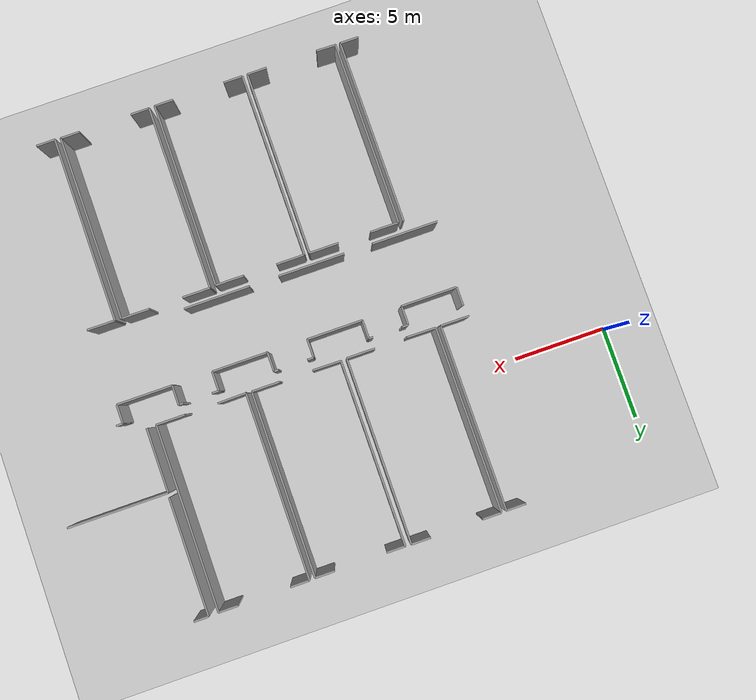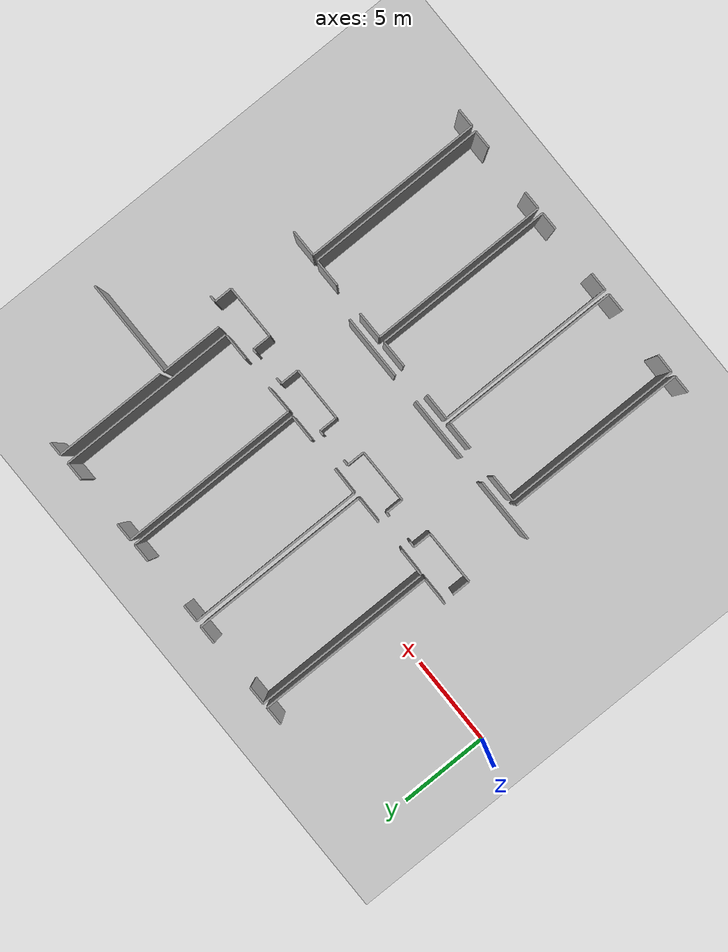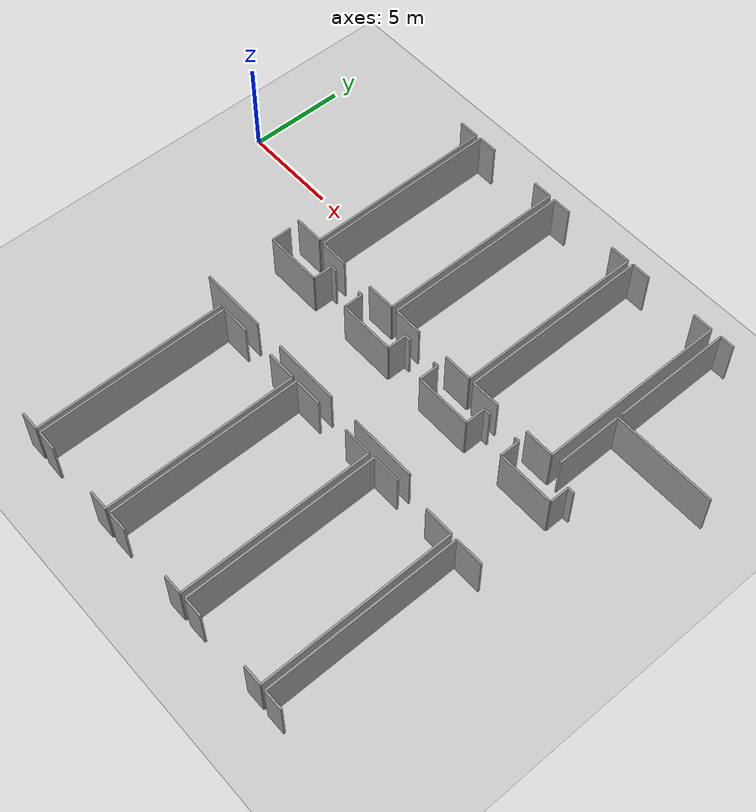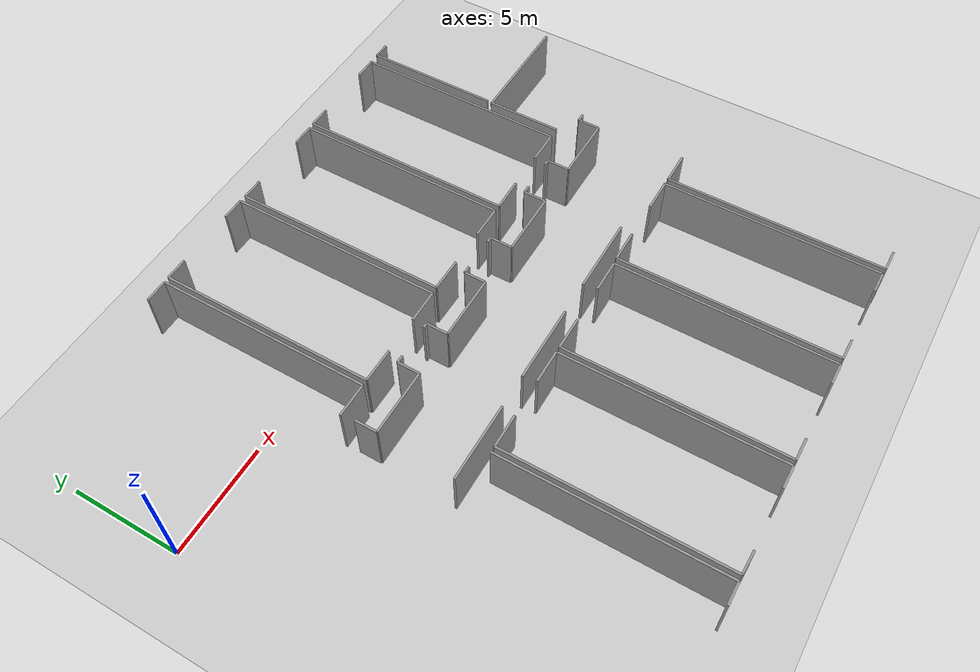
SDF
<sdf version="1.6">
 <world name="default">
  <model name="ground_plane">
   <static>1</static>
   <link name="link">
    <collision name="collision">
     <geometry><plane><normal>0 0 1</normal><size>100 100</size></plane></geometry>
     <surface><friction><ode><mu>100</mu><mu2>50</mu2></ode></friction></surface>
    </collision>
    <visual name="visual">
     <cast_shadows>0</cast_shadows>
     <geometry><plane><normal>0 0 1</normal><size>100 100</size></plane></geometry>
     <material>
      <script><uri>file://media/materials/scripts/gazebo.material</uri><name>Gazebo/Grey</name></script>
     </material>
    </visual>
   </link>
  </model>
  <model name="50055641">
   <static>1</static>
   <link name="Wall_212">
    <collision name="Wall_212_Collision">
     <geometry><box><size>1.01562797547 0.1 2.5</size></box></geometry>
     <pose>0.507813987736 0 1.25 0 0 0</pose>
    </collision>
    <visual name="Wall_212_Visual">
     <pose>0.507813987736 0 1.25 0 0 0</pose>
     <geometry><box><size>1.01562797547 0.1 2.5</size></box></geometry>
     <material>
      <script><uri>file://media/materials/scripts/gazebo.material</uri><name>Gazebo/Grey</name></script>
      <ambient>1 1 1 1</ambient>
     </material>
    </visual>
    <pose>76.2968934479 -22.2944305501 0 0 0 -1.57079632679</pose>
   </link>
   <link name="Wall_213">
    <collision name="Wall_213_Collision">
     <geometry><box><size>3.00270410948 0.1 2.5</size></box></geometry>
     <pose>1.50135205474 0 1.25 0 0 0</pose>
    </collision>
    <visual name="Wall_213_Visual">
     <pose>1.50135205474 0 1.25 0 0 0</pose>
     <geometry><box><size>3.00270410948 0.1 2.5</size></box></geometry>
     <material>
      <script><uri>file://media/materials/scripts/gazebo.material</uri><name>Gazebo/Grey</name></script>
      <ambient>1 1 1 1</ambient>
     </material>
    </visual>
    <pose>76.2968934479 -23.3100585256 0 0 0 0.0</pose>
   </link>
   <link name="Wall_214">
    <collision name="Wall_214_Collision">
     <geometry><box><size>1.02667292971 0.1 2.5</size></box></geometry>
     <pose>0.513336464853 0 1.25 0 0 0</pose>
    </collision>
    <visual name="Wall_214_Visual">
     <pose>0.513336464853 0 1.25 0 0 0</pose>
     <geometry><box><size>1.02667292971 0.1 2.5</size></box></geometry>
     <material>
      <script><uri>file://media/materials/scripts/gazebo.material</uri><name>Gazebo/Grey</name></script>
      <ambient>1 1 1 1</ambient>
     </material>
    </visual>
    <pose>79.2995975574 -23.3100585256 0 0 0 1.57079632679</pose>
   </link>
   <link name="Wall_215">
    <collision name="Wall_215_Collision">
     <geometry><box><size>0.342139674237 0.1 2.5</size></box></geometry>
     <pose>0.171069837119 0 1.25 0 0 0</pose>
    </collision>
    <visual name="Wall_215_Visual">
     <pose>0.171069837119 0 1.25 0 0 0</pose>
     <geometry><box><size>0.342139674237 0.1 2.5</size></box></geometry>
     <material>
      <script><uri>file://media/materials/scripts/gazebo.material</uri><name>Gazebo/Grey</name></script>
      <ambient>1 1 1 1</ambient>
     </material>
    </visual>
    <pose>79.2995975574 -22.2833855959 0 0 0 0.0</pose>
   </link>
   <link name="Wall_216">
    <collision name="Wall_216_Collision">
     <geometry><box><size>0.232324899389 0.1 2.5</size></box></geometry>
     <pose>0.116162449695 0 1.25 0 0 0</pose>
    </collision>
    <visual name="Wall_216_Visual">
     <pose>0.116162449695 0 1.25 0 0 0</pose>
     <geometry><box><size>0.232324899389 0.1 2.5</size></box></geometry>
     <material>
      <script><uri>file://media/materials/scripts/gazebo.material</uri><name>Gazebo/Grey</name></script>
      <ambient>1 1 1 1</ambient>
     </material>
    </visual>
    <pose>81.2145641052 -22.2833855959 0 0 0 0.0</pose>
   </link>
   <link name="Wall_217">
    <collision name="Wall_217_Collision">
     <geometry><box><size>1.00394825375 0.1 2.5</size></box></geometry>
     <pose>0.501974126877 0 1.25 0 0 0</pose>
    </collision>
    <visual name="Wall_217_Visual">
     <pose>0.501974126877 0 1.25 0 0 0</pose>
     <geometry><box><size>1.00394825375 0.1 2.5</size></box></geometry>
     <material>
      <script><uri>file://media/materials/scripts/gazebo.material</uri><name>Gazebo/Grey</name></script>
      <ambient>1 1 1 1</ambient>
     </material>
    </visual>
    <pose>81.4468890046 -22.2833855959 0 0 0 -1.57079632679</pose>
   </link>
   <link name="Wall_218">
    <collision name="Wall_218_Collision">
     <geometry><box><size>2.9977529231 0.1 2.5</size></box></geometry>
     <pose>1.49887646155 0 1.25 0 0 0</pose>
    </collision>
    <visual name="Wall_218_Visual">
     <pose>1.49887646155 0 1.25 0 0 0</pose>
     <geometry><box><size>2.9977529231 0.1 2.5</size></box></geometry>
     <material>
      <script><uri>file://media/materials/scripts/gazebo.material</uri><name>Gazebo/Grey</name></script>
      <ambient>1 1 1 1</ambient>
     </material>
    </visual>
    <pose>81.4468890046 -23.2873338496 0 0 0 0.0</pose>
   </link>
   <link name="Wall_219">
    <collision name="Wall_219_Collision">
     <geometry><box><size>1.00166309081 0.1 2.5</size></box></geometry>
     <pose>0.500831545405 0 1.25 0 0 0</pose>
    </collision>
    <visual name="Wall_219_Visual">
     <pose>0.500831545405 0 1.25 0 0 0</pose>
     <geometry><box><size>1.00166309081 0.1 2.5</size></box></geometry>
     <material>
      <script><uri>file://media/materials/scripts/gazebo.material</uri><name>Gazebo/Grey</name></script>
      <ambient>1 1 1 1</ambient>
     </material>
    </visual>
    <pose>84.4446419277 -23.2873338496 0 0 0 1.57079632679</pose>
   </link>
   <link name="Wall_220">
    <collision name="Wall_220_Collision">
     <geometry><box><size>0.333887696937 0.1 2.5</size></box></geometry>
     <pose>0.166943848468 0 1.25 0 0 0</pose>
    </collision>
    <visual name="Wall_220_Visual">
     <pose>0.166943848468 0 1.25 0 0 0</pose>
     <geometry><box><size>0.333887696937 0.1 2.5</size></box></geometry>
     <material>
      <script><uri>file://media/materials/scripts/gazebo.material</uri><name>Gazebo/Grey</name></script>
      <ambient>1 1 1 1</ambient>
     </material>
    </visual>
    <pose>84.4446419277 -22.2856707588 0 0 0 0.0</pose>
   </link>
   <link name="Wall_221">
    <collision name="Wall_221_Collision">
     <geometry><box><size>0.253906993868 0.1 2.5</size></box></geometry>
     <pose>0.126953496934 0 1.25 0 0 0</pose>
    </collision>
    <visual name="Wall_221_Visual">
     <pose>0.126953496934 0 1.25 0 0 0</pose>
     <geometry><box><size>0.253906993868 0.1 2.5</size></box></geometry>
     <material>
      <script><uri>file://media/materials/scripts/gazebo.material</uri><name>Gazebo/Grey</name></script>
      <ambient>1 1 1 1</ambient>
     </material>
    </visual>
    <pose>86.3427236603 -22.2856707588 0 0 0 0.0</pose>
   </link>
   <link name="Wall_222">
    <collision name="Wall_222_Collision">
     <geometry><box><size>1.03543272099 0.1 2.5</size></box></geometry>
     <pose>0.517716360497 0 1.25 0 0 0</pose>
    </collision>
    <visual name="Wall_222_Visual">
     <pose>0.517716360497 0 1.25 0 0 0</pose>
     <geometry><box><size>1.03543272099 0.1 2.5</size></box></geometry>
     <material>
      <script><uri>file://media/materials/scripts/gazebo.material</uri><name>Gazebo/Grey</name></script>
      <ambient>1 1 1 1</ambient>
     </material>
    </visual>
    <pose>86.5966306542 -22.2856707588 0 0 0 -1.57079632679</pose>
   </link>
   <link name="Wall_223">
    <collision name="Wall_223_Collision">
     <geometry><box><size>2.99165915525 0.1 2.5</size></box></geometry>
     <pose>1.49582957763 0 1.25 0 0 0</pose>
    </collision>
    <visual name="Wall_223_Visual">
     <pose>1.49582957763 0 1.25 0 0 0</pose>
     <geometry><box><size>2.99165915525 0.1 2.5</size></box></geometry>
     <material>
      <script><uri>file://media/materials/scripts/gazebo.material</uri><name>Gazebo/Grey</name></script>
      <ambient>1 1 1 1</ambient>
     </material>
    </visual>
    <pose>86.5966306542 -23.3211034798 0 0 0 0.0</pose>
   </link>
   <link name="Wall_224">
    <collision name="Wall_224_Collision">
     <geometry><box><size>1.04571595425 0.1 2.5</size></box></geometry>
     <pose>0.522857977123 0 1.25 0 0 0</pose>
    </collision>
    <visual name="Wall_224_Visual">
     <pose>0.522857977123 0 1.25 0 0 0</pose>
     <geometry><box><size>1.04571595425 0.1 2.5</size></box></geometry>
     <material>
      <script><uri>file://media/materials/scripts/gazebo.material</uri><name>Gazebo/Grey</name></script>
      <ambient>1 1 1 1</ambient>
     </material>
    </visual>
    <pose>89.5882898094 -23.3211034798 0 0 0 1.57079632679</pose>
   </link>
   <link name="Wall_225">
    <collision name="Wall_225_Collision">
     <geometry><box><size>0.372989373992 0.1 2.5</size></box></geometry>
     <pose>0.186494686996 0 1.25 0 0 0</pose>
    </collision>
    <visual name="Wall_225_Visual">
     <pose>0.186494686996 0 1.25 0 0 0</pose>
     <geometry><box><size>0.372989373992 0.1 2.5</size></box></geometry>
     <material>
      <script><uri>file://media/materials/scripts/gazebo.material</uri><name>Gazebo/Grey</name></script>
      <ambient>1 1 1 1</ambient>
     </material>
    </visual>
    <pose>89.5882898094 -22.2753875255 0 0 0 0.0</pose>
   </link>
   <link name="Wall_226">
    <collision name="Wall_226_Collision">
     <geometry><box><size>0.258731226752 0.1 2.5</size></box></geometry>
     <pose>0.129365613376 0 1.25 0 0 0</pose>
    </collision>
    <visual name="Wall_226_Visual">
     <pose>0.129365613376 0 1.25 0 0 0</pose>
     <geometry><box><size>0.258731226752 0.1 2.5</size></box></geometry>
     <material>
      <script><uri>file://media/materials/scripts/gazebo.material</uri><name>Gazebo/Grey</name></script>
      <ambient>1 1 1 1</ambient>
     </material>
    </visual>
    <pose>91.4971625893 -22.2753875255 0 0 0 0.0</pose>
   </link>
   <link name="Wall_227">
    <collision name="Wall_227_Collision">
     <geometry><box><size>1.0434307913 0.1 2.5</size></box></geometry>
     <pose>0.521715395651 0 1.25 0 0 0</pose>
    </collision>
    <visual name="Wall_227_Visual">
     <pose>0.521715395651 0 1.25 0 0 0</pose>
     <geometry><box><size>1.0434307913 0.1 2.5</size></box></geometry>
     <material>
      <script><uri>file://media/materials/scripts/gazebo.material</uri><name>Gazebo/Grey</name></script>
      <ambient>1 1 1 1</ambient>
     </material>
    </visual>
    <pose>91.7558938161 -22.2753875255 0 0 0 -1.57079632679</pose>
   </link>
   <link name="Wall_228">
    <collision name="Wall_228_Collision">
     <geometry><box><size>2.98835836433 0.1 2.5</size></box></geometry>
     <pose>1.49417918217 0 1.25 0 0 0</pose>
    </collision>
    <visual name="Wall_228_Visual">
     <pose>1.49417918217 0 1.25 0 0 0</pose>
     <geometry><box><size>2.98835836433 0.1 2.5</size></box></geometry>
     <material>
      <script><uri>file://media/materials/scripts/gazebo.material</uri><name>Gazebo/Grey</name></script>
      <ambient>1 1 1 1</ambient>
     </material>
    </visual>
    <pose>91.7558938161 -23.3188183169 0 0 0 0.0</pose>
   </link>
   <link name="Wall_229">
    <collision name="Wall_229_Collision">
     <geometry><box><size>1.01829399891 0.1 2.5</size></box></geometry>
     <pose>0.509146999454 0 1.25 0 0 0</pose>
    </collision>
    <visual name="Wall_229_Visual">
     <pose>0.509146999454 0 1.25 0 0 0</pose>
     <geometry><box><size>1.01829399891 0.1 2.5</size></box></geometry>
     <material>
      <script><uri>file://media/materials/scripts/gazebo.material</uri><name>Gazebo/Grey</name></script>
      <ambient>1 1 1 1</ambient>
     </material>
    </visual>
    <pose>94.7442521804 -23.3188183169 0 0 0 1.57079632679</pose>
   </link>
   <link name="Wall_230">
    <collision name="Wall_230_Collision">
     <geometry><box><size>0.35902448933 0.1 2.5</size></box></geometry>
     <pose>0.179512244665 0 1.25 0 0 0</pose>
    </collision>
    <visual name="Wall_230_Visual">
     <pose>0.179512244665 0 1.25 0 0 0</pose>
     <geometry><box><size>0.35902448933 0.1 2.5</size></box></geometry>
     <material>
      <script><uri>file://media/materials/scripts/gazebo.material</uri><name>Gazebo/Grey</name></script>
      <ambient>1 1 1 1</ambient>
     </material>
    </visual>
    <pose>94.7442521804 -22.3005243179 0 0 0 0.0</pose>
   </link>
   <link name="Wall_236">
    <collision name="Wall_236_Collision">
     <geometry><box><size>3.55990300753 0.1 2.5</size></box></geometry>
     <pose>1.77995150376 0 1.25 0 0 0</pose>
    </collision>
    <visual name="Wall_236_Visual">
     <pose>1.77995150376 0 1.25 0 0 0</pose>
     <geometry><box><size>3.55990300753 0.1 2.5</size></box></geometry>
     <material>
      <script><uri>file://media/materials/scripts/gazebo.material</uri><name>Gazebo/Grey</name></script>
      <ambient>1 1 1 1</ambient>
     </material>
    </visual>
    <pose>89.9338572281 -26.8594243928 0 0 0 3.14159265359</pose>
   </link>
   <link name="Wall_237">
    <collision name="Wall_237_Collision">
     <geometry><box><size>3.58059642753 0.1 2.5</size></box></geometry>
     <pose>1.79029821376 0 1.25 0 0 0</pose>
    </collision>
    <visual name="Wall_237_Visual">
     <pose>1.79029821376 0 1.25 0 0 0</pose>
     <geometry><box><size>3.58059642753 0.1 2.5</size></box></geometry>
     <material>
      <script><uri>file://media/materials/scripts/gazebo.material</uri><name>Gazebo/Grey</name></script>
      <ambient>1 1 1 1</ambient>
     </material>
    </visual>
    <pose>84.7899554393 -26.8594243928 0 0 0 3.14159265359</pose>
   </link>
   <link name="Wall_238">
    <collision name="Wall_238_Collision">
     <geometry><box><size>3.561045589 0.1 2.5</size></box></geometry>
     <pose>1.7805227945 0 1.25 0 0 0</pose>
    </collision>
    <visual name="Wall_238_Visual">
     <pose>1.7805227945 0 1.25 0 0 0</pose>
     <geometry><box><size>3.561045589 0.1 2.5</size></box></geometry>
     <material>
      <script><uri>file://media/materials/scripts/gazebo.material</uri><name>Gazebo/Grey</name></script>
      <ambient>1 1 1 1</ambient>
     </material>
    </visual>
    <pose>79.6480849065 -26.8594243928 0 0 0 3.14159265359</pose>
   </link>
   <link name="Wall_272">
    <collision name="Wall_272_Collision">
     <geometry><box><size>1.05409488504 0.1 2.5</size></box></geometry>
     <pose>0.527047442522 0 1.25 0 0 0</pose>
    </collision>
    <visual name="Wall_272_Visual">
     <pose>0.527047442522 0 1.25 0 0 0</pose>
     <geometry><box><size>1.05409488504 0.1 2.5</size></box></geometry>
     <material>
      <script><uri>file://media/materials/scripts/gazebo.material</uri><name>Gazebo/Grey</name></script>
      <ambient>1 1 1 1</ambient>
     </material>
    </visual>
    <pose>76.6820703576 -11.7486574668 0 0 0 0.0</pose>
   </link>
   <link name="Wall_273">
    <collision name="Wall_273_Collision">
     <geometry><box><size>9.94172834491 0.1 2.5</size></box></geometry>
     <pose>4.97086417245 0 1.25 0 0 0</pose>
    </collision>
    <visual name="Wall_273_Visual">
     <pose>4.97086417245 0 1.25 0 0 0</pose>
     <geometry><box><size>9.94172834491 0.1 2.5</size></box></geometry>
     <material>
      <script><uri>file://media/materials/scripts/gazebo.material</uri><name>Gazebo/Grey</name></script>
      <ambient>1 1 1 1</ambient>
     </material>
    </visual>
    <pose>77.7361652427 -11.7486574668 0 0 0 -1.57079632679</pose>
   </link>
   <link name="Wall_274">
    <collision name="Wall_274_Collision">
     <geometry><box><size>1.55175259303 0.1 2.5</size></box></geometry>
     <pose>0.775876296513 0 1.25 0 0 0</pose>
    </collision>
    <visual name="Wall_274_Visual">
     <pose>0.775876296513 0 1.25 0 0 0</pose>
     <geometry><box><size>1.55175259303 0.1 2.5</size></box></geometry>
     <material>
      <script><uri>file://media/materials/scripts/gazebo.material</uri><name>Gazebo/Grey</name></script>
      <ambient>1 1 1 1</ambient>
     </material>
    </visual>
    <pose>77.7361652427 -21.6903858117 0 0 0 3.14159265359</pose>
   </link>
   <link name="Wall_276">
    <collision name="Wall_276_Collision">
     <geometry><box><size>9.95467760159 0.1 2.5</size></box></geometry>
     <pose>4.9773388008 0 1.25 0 0 0</pose>
    </collision>
    <visual name="Wall_276_Visual">
     <pose>4.9773388008 0 1.25 0 0 0</pose>
     <geometry><box><size>9.95467760159 0.1 2.5</size></box></geometry>
     <material>
      <script><uri>file://media/materials/scripts/gazebo.material</uri><name>Gazebo/Grey</name></script>
      <ambient>1 1 1 1</ambient>
     </material>
    </visual>
    <pose>78.0031484467 -21.6853076718 0 0 0 1.57079632679</pose>
   </link>
   <link name="Wall_277">
    <collision name="Wall_277_Collision">
     <geometry><box><size>1.01753227793 0.1 2.5</size></box></geometry>
     <pose>0.508766138963 0 1.25 0 0 0</pose>
    </collision>
    <visual name="Wall_277_Visual">
     <pose>0.508766138963 0 1.25 0 0 0</pose>
     <geometry><box><size>1.01753227793 0.1 2.5</size></box></geometry>
     <material>
      <script><uri>file://media/materials/scripts/gazebo.material</uri><name>Gazebo/Grey</name></script>
      <ambient>1 1 1 1</ambient>
     </material>
    </visual>
    <pose>78.0031484467 -11.7306300702 0 0 0 0.0</pose>
   </link>
   <link name="Wall_278">
    <collision name="Wall_278_Collision">
     <geometry><box><size>1.03733702345 0.1 2.5</size></box></geometry>
     <pose>0.518668511724 0 1.25 0 0 0</pose>
    </collision>
    <visual name="Wall_278_Visual">
     <pose>0.518668511724 0 1.25 0 0 0</pose>
     <geometry><box><size>1.03733702345 0.1 2.5</size></box></geometry>
     <material>
      <script><uri>file://media/materials/scripts/gazebo.material</uri><name>Gazebo/Grey</name></script>
      <ambient>1 1 1 1</ambient>
     </material>
    </visual>
    <pose>81.8146732852 -11.7306300702 0 0 0 0.0</pose>
   </link>
   <link name="Wall_279">
    <collision name="Wall_279_Collision">
     <geometry><box><size>9.96788076528 0.1 2.5</size></box></geometry>
     <pose>4.98394038264 0 1.25 0 0 0</pose>
    </collision>
    <visual name="Wall_279_Visual">
     <pose>4.98394038264 0 1.25 0 0 0</pose>
     <geometry><box><size>9.96788076528 0.1 2.5</size></box></geometry>
     <material>
      <script><uri>file://media/materials/scripts/gazebo.material</uri><name>Gazebo/Grey</name></script>
      <ambient>1 1 1 1</ambient>
     </material>
    </visual>
    <pose>82.8520103086 -11.7306300702 0 0 0 -1.57079632679</pose>
   </link>
   <link name="Wall_280">
    <collision name="Wall_280_Collision">
     <geometry><box><size>1.53131308002 0.1 2.5</size></box></geometry>
     <pose>0.765656540009 0 1.25 0 0 0</pose>
    </collision>
    <visual name="Wall_280_Visual">
     <pose>0.765656540009 0 1.25 0 0 0</pose>
     <geometry><box><size>1.53131308002 0.1 2.5</size></box></geometry>
     <material>
      <script><uri>file://media/materials/scripts/gazebo.material</uri><name>Gazebo/Grey</name></script>
      <ambient>1 1 1 1</ambient>
     </material>
    </visual>
    <pose>82.8520103086 -21.6985108355 0 0 0 3.14159265359</pose>
   </link>
   <link name="Wall_281">
    <collision name="Wall_281_Collision">
     <geometry><box><size>1.56983551344 0.1 2.5</size></box></geometry>
     <pose>0.784917756718 0 1.25 0 0 0</pose>
    </collision>
    <visual name="Wall_281_Visual">
     <pose>0.784917756718 0 1.25 0 0 0</pose>
     <geometry><box><size>1.56983551344 0.1 2.5</size></box></geometry>
     <material>
      <script><uri>file://media/materials/scripts/gazebo.material</uri><name>Gazebo/Grey</name></script>
      <ambient>1 1 1 1</ambient>
     </material>
    </visual>
    <pose>79.5729284363 -21.6985108355 0 0 0 3.13318201487</pose>
   </link>
   <link name="Wall_282">
    <collision name="Wall_282_Collision">
     <geometry><box><size>9.91176731963 0.1 2.5</size></box></geometry>
     <pose>4.95588365982 0 1.25 0 0 0</pose>
    </collision>
    <visual name="Wall_282_Visual">
     <pose>4.95588365982 0 1.25 0 0 0</pose>
     <geometry><box><size>9.91176731963 0.1 2.5</size></box></geometry>
     <material>
      <script><uri>file://media/materials/scripts/gazebo.material</uri><name>Gazebo/Grey</name></script>
      <ambient>1 1 1 1</ambient>
     </material>
    </visual>
    <pose>83.1744721908 -21.6651220658 0 0 0 1.57079632679</pose>
   </link>
   <link name="Wall_283">
    <collision name="Wall_283_Collision">
     <geometry><box><size>0.994807601975 0.1 2.5</size></box></geometry>
     <pose>0.497403800988 0 1.25 0 0 0</pose>
    </collision>
    <visual name="Wall_283_Visual">
     <pose>0.497403800988 0 1.25 0 0 0</pose>
     <geometry><box><size>0.994807601975 0.1 2.5</size></box></geometry>
     <material>
      <script><uri>file://media/materials/scripts/gazebo.material</uri><name>Gazebo/Grey</name></script>
      <ambient>1 1 1 1</ambient>
     </material>
    </visual>
    <pose>83.1744721908 -11.7533547462 0 0 0 0.0</pose>
   </link>
   <link name="Wall_284">
    <collision name="Wall_284_Collision">
     <geometry><box><size>1.04292297731 0.1 2.5</size></box></geometry>
     <pose>0.521461488657 0 1.25 0 0 0</pose>
    </collision>
    <visual name="Wall_284_Visual">
     <pose>0.521461488657 0 1.25 0 0 0</pose>
     <geometry><box><size>1.04292297731 0.1 2.5</size></box></geometry>
     <material>
      <script><uri>file://media/materials/scripts/gazebo.material</uri><name>Gazebo/Grey</name></script>
      <ambient>1 1 1 1</ambient>
     </material>
    </visual>
    <pose>86.9628914928 -11.7533547462 0 0 0 0.0</pose>
   </link>
   <link name="Wall_285">
    <collision name="Wall_285_Collision">
     <geometry><box><size>9.93423808859 0.1 2.5</size></box></geometry>
     <pose>4.96711904429 0 1.25 0 0 0</pose>
    </collision>
    <visual name="Wall_285_Visual">
     <pose>4.96711904429 0 1.25 0 0 0</pose>
     <geometry><box><size>9.93423808859 0.1 2.5</size></box></geometry>
     <material>
      <script><uri>file://media/materials/scripts/gazebo.material</uri><name>Gazebo/Grey</name></script>
      <ambient>1 1 1 1</ambient>
     </material>
    </visual>
    <pose>88.0058144702 -11.7533547462 0 0 0 -1.57079632679</pose>
   </link>
   <link name="Wall_286">
    <collision name="Wall_286_Collision">
     <geometry><box><size>1.52102984677 0.1 2.5</size></box></geometry>
     <pose>0.760514923384 0 1.25 0 0 0</pose>
    </collision>
    <visual name="Wall_286_Visual">
     <pose>0.760514923384 0 1.25 0 0 0</pose>
     <geometry><box><size>1.52102984677 0.1 2.5</size></box></geometry>
     <material>
      <script><uri>file://media/materials/scripts/gazebo.material</uri><name>Gazebo/Grey</name></script>
      <ambient>1 1 1 1</ambient>
     </material>
    </visual>
    <pose>88.0058144702 -21.6875928347 0 0 0 3.14159265359</pose>
   </link>
   <link name="Wall_287">
    <collision name="Wall_287_Collision">
     <geometry><box><size>1.54417193553 0.1 2.5</size></box></geometry>
     <pose>0.772085967765 0 1.25 0 0 0</pose>
    </collision>
    <visual name="Wall_287_Visual">
     <pose>0.772085967765 0 1.25 0 0 0</pose>
     <geometry><box><size>1.54417193553 0.1 2.5</size></box></geometry>
     <material>
      <script><uri>file://media/materials/scripts/gazebo.material</uri><name>Gazebo/Grey</name></script>
      <ambient>1 1 1 1</ambient>
     </material>
    </visual>
    <pose>84.7184806205 -21.6875928347 0 0 0 3.12704015358</pose>
   </link>
   <link name="Wall_288">
    <collision name="Wall_288_Collision">
     <geometry><box><size>9.97867181252 0.1 2.5</size></box></geometry>
     <pose>4.98933590626 0 1.25 0 0 0</pose>
    </collision>
    <visual name="Wall_288_Visual">
     <pose>4.98933590626 0 1.25 0 0 0</pose>
     <geometry><box><size>9.97867181252 0.1 2.5</size></box></geometry>
     <material>
      <script><uri>file://media/materials/scripts/gazebo.material</uri><name>Gazebo/Grey</name></script>
      <ambient>1 1 1 1</ambient>
     </material>
    </visual>
    <pose>88.3077098859 -21.7093018827 0 0 0 1.57079632679</pose>
   </link>
   <link name="Wall_289">
    <collision name="Wall_289_Collision">
     <geometry><box><size>1.01321585903 0.1 2.5</size></box></geometry>
     <pose>0.506607929515 0 1.25 0 0 0</pose>
    </collision>
    <visual name="Wall_289_Visual">
     <pose>0.506607929515 0 1.25 0 0 0</pose>
     <geometry><box><size>1.01321585903 0.1 2.5</size></box></geometry>
     <material>
      <script><uri>file://media/materials/scripts/gazebo.material</uri><name>Gazebo/Grey</name></script>
      <ambient>1 1 1 1</ambient>
     </material>
    </visual>
    <pose>88.3077098859 -11.7306300702 0 0 0 0.0</pose>
   </link>
   <link name="Wall_290">
    <collision name="Wall_290_Collision">
     <geometry><box><size>1.0516827686 0.1 2.5</size></box></geometry>
     <pose>0.525841384301 0 1.25 0 0 0</pose>
    </collision>
    <visual name="Wall_290_Visual">
     <pose>0.525841384301 0 1.25 0 0 0</pose>
     <geometry><box><size>1.0516827686 0.1 2.5</size></box></geometry>
     <material>
      <script><uri>file://media/materials/scripts/gazebo.material</uri><name>Gazebo/Grey</name></script>
      <ambient>1 1 1 1</ambient>
     </material>
    </visual>
    <pose>92.1065393746 -11.7306300702 0 0 0 0.0</pose>
   </link>
   <link name="Wall_291">
    <collision name="Wall_291_Collision">
     <geometry><box><size>9.95467760159 0.1 2.5</size></box></geometry>
     <pose>4.9773388008 0 1.25 0 0 0</pose>
    </collision>
    <visual name="Wall_291_Visual">
     <pose>4.9773388008 0 1.25 0 0 0</pose>
     <geometry><box><size>9.95467760159 0.1 2.5</size></box></geometry>
     <material>
      <script><uri>file://media/materials/scripts/gazebo.material</uri><name>Gazebo/Grey</name></script>
      <ambient>1 1 1 1</ambient>
     </material>
    </visual>
    <pose>93.1582221432 -11.7306300702 0 0 0 -1.57079632679</pose>
   </link>
   <link name="Wall_292">
    <collision name="Wall_292_Collision">
     <geometry><box><size>1.55251431401 0.1 2.5</size></box></geometry>
     <pose>0.776257157003 0 1.25 0 0 0</pose>
    </collision>
    <visual name="Wall_292_Visual">
     <pose>0.776257157003 0 1.25 0 0 0</pose>
     <geometry><box><size>1.55251431401 0.1 2.5</size></box></geometry>
     <material>
      <script><uri>file://media/materials/scripts/gazebo.material</uri><name>Gazebo/Grey</name></script>
      <ambient>1 1 1 1</ambient>
     </material>
    </visual>
    <pose>93.1582221432 -21.6853076718 0 0 0 3.14159265359</pose>
   </link>
   <link name="Wall_293">
    <collision name="Wall_293_Collision">
     <geometry><box><size>1.53264349299 0.1 2.5</size></box></geometry>
     <pose>0.766321746493 0 1.25 0 0 0</pose>
    </collision>
    <visual name="Wall_293_Visual">
     <pose>0.766321746493 0 1.25 0 0 0</pose>
     <geometry><box><size>1.53264349299 0.1 2.5</size></box></geometry>
     <material>
      <script><uri>file://media/materials/scripts/gazebo.material</uri><name>Gazebo/Grey</name></script>
      <ambient>1 1 1 1</ambient>
     </material>
    </visual>
    <pose>89.8401655474 -21.6853076718 0 0 0 -3.12593657227</pose>
   </link>
   <link name="Wall_294">
    <collision name="Wall_294_Collision">
     <geometry><box><size>3.45580114004 0.1 2.5</size></box></geometry>
     <pose>1.72790057002 0 1.25 0 0 0</pose>
    </collision>
    <visual name="Wall_294_Visual">
     <pose>1.72790057002 0 1.25 0 0 0</pose>
     <geometry><box><size>3.45580114004 0.1 2.5</size></box></geometry>
     <material>
      <script><uri>file://media/materials/scripts/gazebo.material</uri><name>Gazebo/Grey</name></script>
      <ambient>1 1 1 1</ambient>
     </material>
    </visual>
    <pose>93.6695908289 -21.675659206 0 0 0 1.57079632679</pose>
   </link>
   <link name="Wall_295">
    <collision name="Wall_295_Collision">
     <geometry><box><size>5.39222282878 0.1 2.5</size></box></geometry>
     <pose>2.69611141439 0 1.25 0 0 0</pose>
    </collision>
    <visual name="Wall_295_Visual">
     <pose>2.69611141439 0 1.25 0 0 0</pose>
     <geometry><box><size>5.39222282878 0.1 2.5</size></box></geometry>
     <material>
      <script><uri>file://media/materials/scripts/gazebo.material</uri><name>Gazebo/Grey</name></script>
      <ambient>1 1 1 1</ambient>
     </material>
    </visual>
    <pose>93.6695908289 -18.219858066 0 0 0 0.0</pose>
   </link>
   <link name="Wall_301">
    <collision name="Wall_301_Collision">
     <geometry><box><size>10.019169978 0.1 2.5</size></box></geometry>
     <pose>5.00958498902 0 1.25 0 0 0</pose>
    </collision>
    <visual name="Wall_301_Visual">
     <pose>5.00958498902 0 1.25 0 0 0</pose>
     <geometry><box><size>10.019169978 0.1 2.5</size></box></geometry>
     <material>
      <script><uri>file://media/materials/scripts/gazebo.material</uri><name>Gazebo/Grey</name></script>
      <ambient>1 1 1 1</ambient>
     </material>
    </visual>
    <pose>93.4827152814 -37.4699437596 0 0 0 1.57079632679</pose>
   </link>
   <link name="Wall_302">
    <collision name="Wall_302_Collision">
     <geometry><box><size>1.50363721769 0.1 2.5</size></box></geometry>
     <pose>0.751818608844 0 1.25 0 0 0</pose>
    </collision>
    <visual name="Wall_302_Visual">
     <pose>0.751818608844 0 1.25 0 0 0</pose>
     <geometry><box><size>1.50363721769 0.1 2.5</size></box></geometry>
     <material>
      <script><uri>file://media/materials/scripts/gazebo.material</uri><name>Gazebo/Grey</name></script>
      <ambient>1 1 1 1</ambient>
     </material>
    </visual>
    <pose>93.4827152814 -27.4507737816 0 0 0 0.0</pose>
   </link>
   <link name="Wall_306">
    <collision name="Wall_306_Collision">
     <geometry><box><size>1.01600979569 0.1 2.5</size></box></geometry>
     <pose>0.508004897844 0 1.25 0 0 0</pose>
    </collision>
    <visual name="Wall_306_Visual">
     <pose>0.508004897844 0 1.25 0 0 0</pose>
     <geometry><box><size>1.01600979569 0.1 2.5</size></box></geometry>
     <material>
      <script><uri>file://media/materials/scripts/gazebo.material</uri><name>Gazebo/Grey</name></script>
      <ambient>1 1 1 1</ambient>
     </material>
    </visual>
    <pose>94.4987241174 -37.4685472711 0 0 0 -3.14021816989</pose>
   </link>
   <link name="Wall_307">
    <collision name="Wall_307_Collision">
     <geometry><box><size>1.02667292971 0.1 2.5</size></box></geometry>
     <pose>0.513336464853 0 1.25 0 0 0</pose>
    </collision>
    <visual name="Wall_307_Visual">
     <pose>0.513336464853 0 1.25 0 0 0</pose>
     <geometry><box><size>1.02667292971 0.1 2.5</size></box></geometry>
     <material>
      <script><uri>file://media/materials/scripts/gazebo.material</uri><name>Gazebo/Grey</name></script>
      <ambient>1 1 1 1</ambient>
     </material>
    </visual>
    <pose>93.1761225863 -37.4404905483 0 0 0 3.14159265359</pose>
   </link>
   <link name="Wall_308">
    <collision name="Wall_308_Collision">
     <geometry><box><size>1.01562797547 0.1 2.5</size></box></geometry>
     <pose>0.507813987736 0 1.25 0 0 0</pose>
    </collision>
    <visual name="Wall_308_Visual">
     <pose>0.507813987736 0 1.25 0 0 0</pose>
     <geometry><box><size>1.01562797547 0.1 2.5</size></box></geometry>
     <material>
      <script><uri>file://media/materials/scripts/gazebo.material</uri><name>Gazebo/Grey</name></script>
      <ambient>1 1 1 1</ambient>
     </material>
    </visual>
    <pose>89.3343828156 -37.4404905483 0 0 0 3.14159265359</pose>
   </link>
   <link name="Wall_309">
    <collision name="Wall_309_Collision">
     <geometry><box><size>10.0019043025 0.1 2.5</size></box></geometry>
     <pose>5.00095215123 0 1.25 0 0 0</pose>
    </collision>
    <visual name="Wall_309_Visual">
     <pose>5.00095215123 0 1.25 0 0 0</pose>
     <geometry><box><size>10.0019043025 0.1 2.5</size></box></geometry>
     <material>
      <script><uri>file://media/materials/scripts/gazebo.material</uri><name>Gazebo/Grey</name></script>
      <ambient>1 1 1 1</ambient>
     </material>
    </visual>
    <pose>88.3187548401 -37.4404905483 0 0 0 1.57079632679</pose>
   </link>
   <link name="Wall_310">
    <collision name="Wall_310_Collision">
     <geometry><box><size>1.50528761315 0.1 2.5</size></box></geometry>
     <pose>0.752643806574 0 1.25 0 0 0</pose>
    </collision>
    <visual name="Wall_310_Visual">
     <pose>0.752643806574 0 1.25 0 0 0</pose>
     <geometry><box><size>1.50528761315 0.1 2.5</size></box></geometry>
     <material>
      <script><uri>file://media/materials/scripts/gazebo.material</uri><name>Gazebo/Grey</name></script>
      <ambient>1 1 1 1</ambient>
     </material>
    </visual>
    <pose>88.3187548401 -27.4385862459 0 0 0 0.0</pose>
   </link>
   <link name="Wall_311">
    <collision name="Wall_311_Collision">
     <geometry><box><size>1.54756312763 0.1 2.5</size></box></geometry>
     <pose>0.773781563813 0 1.25 0 0 0</pose>
    </collision>
    <visual name="Wall_311_Visual">
     <pose>0.773781563813 0 1.25 0 0 0</pose>
     <geometry><box><size>1.54756312763 0.1 2.5</size></box></geometry>
     <material>
      <script><uri>file://media/materials/scripts/gazebo.material</uri><name>Gazebo/Grey</name></script>
      <ambient>1 1 1 1</ambient>
     </material>
    </visual>
    <pose>91.6052000152 -27.4385862459 0 0 0 0.0</pose>
   </link>
   <link name="Wall_312">
    <collision name="Wall_312_Collision">
     <geometry><box><size>10.0019315804 0.1 2.5</size></box></geometry>
     <pose>5.0009657902 0 1.25 0 0 0</pose>
    </collision>
    <visual name="Wall_312_Visual">
     <pose>5.0009657902 0 1.25 0 0 0</pose>
     <geometry><box><size>10.0019315804 0.1 2.5</size></box></geometry>
     <material>
      <script><uri>file://media/materials/scripts/gazebo.material</uri><name>Gazebo/Grey</name></script>
      <ambient>1 1 1 1</ambient>
     </material>
    </visual>
    <pose>93.1527631429 -27.4385862459 0 0 0 -1.56846083145</pose>
   </link>
   <link name="Wall_313">
    <collision name="Wall_313_Collision">
     <geometry><box><size>1.00788381216 0.1 2.5</size></box></geometry>
     <pose>0.50394190608 0 1.25 0 0 0</pose>
    </collision>
    <visual name="Wall_313_Visual">
     <pose>0.50394190608 0 1.25 0 0 0</pose>
     <geometry><box><size>1.00788381216 0.1 2.5</size></box></geometry>
     <material>
      <script><uri>file://media/materials/scripts/gazebo.material</uri><name>Gazebo/Grey</name></script>
      <ambient>1 1 1 1</ambient>
     </material>
    </visual>
    <pose>88.0058144702 -37.4572484099 0 0 0 3.14159265359</pose>
   </link>
   <link name="Wall_314">
    <collision name="Wall_314_Collision">
     <geometry><box><size>1.04635072173 0.1 2.5</size></box></geometry>
     <pose>0.523175360865 0 1.25 0 0 0</pose>
    </collision>
    <visual name="Wall_314_Visual">
     <pose>0.523175360865 0 1.25 0 0 0</pose>
     <geometry><box><size>1.04635072173 0.1 2.5</size></box></geometry>
     <material>
      <script><uri>file://media/materials/scripts/gazebo.material</uri><name>Gazebo/Grey</name></script>
      <ambient>1 1 1 1</ambient>
     </material>
    </visual>
    <pose>84.2044459115 -37.4572484099 0 0 0 3.14159265359</pose>
   </link>
   <link name="Wall_315">
    <collision name="Wall_315_Collision">
     <geometry><box><size>9.98133783595 0.1 2.5</size></box></geometry>
     <pose>4.99066891798 0 1.25 0 0 0</pose>
    </collision>
    <visual name="Wall_315_Visual">
     <pose>4.99066891798 0 1.25 0 0 0</pose>
     <geometry><box><size>9.98133783595 0.1 2.5</size></box></geometry>
     <material>
      <script><uri>file://media/materials/scripts/gazebo.material</uri><name>Gazebo/Grey</name></script>
      <ambient>1 1 1 1</ambient>
     </material>
    </visual>
    <pose>83.1580951897 -37.4572484099 0 0 0 1.57079632679</pose>
   </link>
   <link name="Wall_316">
    <collision name="Wall_316_Collision">
     <geometry><box><size>1.52763142861 0.1 2.5</size></box></geometry>
     <pose>0.763815714304 0 1.25 0 0 0</pose>
    </collision>
    <visual name="Wall_316_Visual">
     <pose>0.763815714304 0 1.25 0 0 0</pose>
     <geometry><box><size>1.52763142861 0.1 2.5</size></box></geometry>
     <material>
      <script><uri>file://media/materials/scripts/gazebo.material</uri><name>Gazebo/Grey</name></script>
      <ambient>1 1 1 1</ambient>
     </material>
    </visual>
    <pose>83.1580951897 -27.475910574 0 0 0 0.0</pose>
   </link>
   <link name="Wall_317">
    <collision name="Wall_317_Collision">
     <geometry><box><size>1.53435996395 0.1 2.5</size></box></geometry>
     <pose>0.767179981973 0 1.25 0 0 0</pose>
    </collision>
    <visual name="Wall_317_Visual">
     <pose>0.767179981973 0 1.25 0 0 0</pose>
     <geometry><box><size>1.53435996395 0.1 2.5</size></box></geometry>
     <material>
      <script><uri>file://media/materials/scripts/gazebo.material</uri><name>Gazebo/Grey</name></script>
      <ambient>1 1 1 1</ambient>
     </material>
    </visual>
    <pose>86.4752631111 -27.475910574 0 0 0 0.0</pose>
   </link>
   <link name="Wall_318">
    <collision name="Wall_318_Collision">
     <geometry><box><size>9.98133856258 0.1 2.5</size></box></geometry>
     <pose>4.99066928129 0 1.25 0 0 0</pose>
    </collision>
    <visual name="Wall_318_Visual">
     <pose>4.99066928129 0 1.25 0 0 0</pose>
     <geometry><box><size>9.98133856258 0.1 2.5</size></box></geometry>
     <material>
      <script><uri>file://media/materials/scripts/gazebo.material</uri><name>Gazebo/Grey</name></script>
      <ambient>1 1 1 1</ambient>
     </material>
    </visual>
    <pose>88.0096230751 -27.475910574 0 0 0 -1.57117789936</pose>
   </link>
   <link name="Wall_319">
    <collision name="Wall_319_Collision">
     <geometry><box><size>9.97194327718 0.1 2.5</size></box></geometry>
     <pose>4.98597163859 0 1.25 0 0 0</pose>
    </collision>
    <visual name="Wall_319_Visual">
     <pose>4.98597163859 0 1.25 0 0 0</pose>
     <geometry><box><size>9.97194327718 0.1 2.5</size></box></geometry>
     <material>
      <script><uri>file://media/materials/scripts/gazebo.material</uri><name>Gazebo/Grey</name></script>
      <ambient>1 1 1 1</ambient>
     </material>
    </visual>
    <pose>78.0002285163 -37.4437913392 0 0 0 1.57079632679</pose>
   </link>
   <link name="Wall_320">
    <collision name="Wall_320_Collision">
     <geometry><box><size>1.54223108076 0.1 2.5</size></box></geometry>
     <pose>0.771115540378 0 1.25 0 0 0</pose>
    </collision>
    <visual name="Wall_320_Visual">
     <pose>0.771115540378 0 1.25 0 0 0</pose>
     <geometry><box><size>1.54223108076 0.1 2.5</size></box></geometry>
     <material>
      <script><uri>file://media/materials/scripts/gazebo.material</uri><name>Gazebo/Grey</name></script>
      <ambient>1 1 1 1</ambient>
     </material>
    </visual>
    <pose>78.0002285163 -27.4718480621 0 0 0 0.0</pose>
   </link>
   <link name="Wall_321">
    <collision name="Wall_321_Collision">
     <geometry><box><size>1.58691871168 0.1 2.5</size></box></geometry>
     <pose>0.793459355838 0 1.25 0 0 0</pose>
    </collision>
    <visual name="Wall_321_Visual">
     <pose>0.793459355838 0 1.25 0 0 0</pose>
     <geometry><box><size>1.58691871168 0.1 2.5</size></box></geometry>
     <material>
      <script><uri>file://media/materials/scripts/gazebo.material</uri><name>Gazebo/Grey</name></script>
      <ambient>1 1 1 1</ambient>
     </material>
    </visual>
    <pose>81.3010194366 -27.4718480621 0 0 0 0.0</pose>
   </link>
   <link name="Wall_322">
    <collision name="Wall_322_Collision">
     <geometry><box><size>9.99733397656 0.1 2.5</size></box></geometry>
     <pose>4.99866698828 0 1.25 0 0 0</pose>
    </collision>
    <visual name="Wall_322_Visual">
     <pose>4.99866698828 0 1.25 0 0 0</pose>
     <geometry><box><size>9.99733397656 0.1 2.5</size></box></geometry>
     <material>
      <script><uri>file://media/materials/scripts/gazebo.material</uri><name>Gazebo/Grey</name></script>
      <ambient>1 1 1 1</ambient>
     </material>
    </visual>
    <pose>82.8879381483 -27.4718480621 0 0 0 -1.57079632679</pose>
   </link>
   <link name="Wall_323">
    <collision name="Wall_323_Collision">
     <geometry><box><size>1.05371402455 0.1 2.5</size></box></geometry>
     <pose>0.526857012276 0 1.25 0 0 0</pose>
    </collision>
    <visual name="Wall_323_Visual">
     <pose>0.526857012276 0 1.25 0 0 0</pose>
     <geometry><box><size>1.05371402455 0.1 2.5</size></box></geometry>
     <material>
      <script><uri>file://media/materials/scripts/gazebo.material</uri><name>Gazebo/Grey</name></script>
      <ambient>1 1 1 1</ambient>
     </material>
    </visual>
    <pose>82.8879381483 -37.4691820386 0 0 0 3.14159265359</pose>
   </link>
   <link name="Wall_324">
    <collision name="Wall_324_Collision">
     <geometry><box><size>1.0540198922 0.1 2.5</size></box></geometry>
     <pose>0.5270099461 0 1.25 0 0 0</pose>
    </collision>
    <visual name="Wall_324_Visual">
     <pose>0.5270099461 0 1.25 0 0 0</pose>
     <geometry><box><size>1.0540198922 0.1 2.5</size></box></geometry>
     <material>
      <script><uri>file://media/materials/scripts/gazebo.material</uri><name>Gazebo/Grey</name></script>
      <ambient>1 1 1 1</ambient>
     </material>
    </visual>
    <pose>79.0539425408 -37.4691820386 0 0 0 3.11750093016</pose>
   </link>
   <link name="Wall_325">
    <collision name="Wall_325_Collision">
     <geometry><box><size>1.00801076566 0.1 2.5</size></box></geometry>
     <pose>0.504005382828 0 1.25 0 0 0</pose>
    </collision>
    <visual name="Wall_325_Visual">
     <pose>0.504005382828 0 1.25 0 0 0</pose>
     <geometry><box><size>1.00801076566 0.1 2.5</size></box></geometry>
     <material>
      <script><uri>file://media/materials/scripts/gazebo.material</uri><name>Gazebo/Grey</name></script>
      <ambient>1 1 1 1</ambient>
     </material>
    </visual>
    <pose>77.7343878937 -37.4477268976 0 0 0 3.14159265359</pose>
   </link>
   <link name="Wall_330">
    <collision name="Wall_330_Collision">
     <geometry><box><size>9.99314480228 0.1 2.5</size></box></geometry>
     <pose>4.99657240114 0 1.25 0 0 0</pose>
    </collision>
    <visual name="Wall_330_Visual">
     <pose>4.99657240114 0 1.25 0 0 0</pose>
     <geometry><box><size>9.99314480228 0.1 2.5</size></box></geometry>
     <material>
      <script><uri>file://media/materials/scripts/gazebo.material</uri><name>Gazebo/Grey</name></script>
      <ambient>1 1 1 1</ambient>
     </material>
    </visual>
    <pose>77.7319757773 -27.4545823865 0 0 0 -1.57055494968</pose>
   </link>
   <link name="Wall_396">
    <collision name="Wall_396_Collision">
     <geometry><box><size>6.27048712057 0.1 2.5</size></box></geometry>
     <pose>3.13524356028 0 1.25 0 0 0</pose>
    </collision>
    <visual name="Wall_396_Visual">
     <pose>3.13524356028 0 1.25 0 0 0</pose>
     <geometry><box><size>6.27048712057 0.1 2.5</size></box></geometry>
     <material>
      <script><uri>file://media/materials/scripts/gazebo.material</uri><name>Gazebo/Grey</name></script>
      <ambient>1 1 1 1</ambient>
     </material>
    </visual>
    <pose>93.6949815283 -17.9780116543 0 0 0 1.57079632679</pose>
   </link>
   <link name="Wall_397">
    <collision name="Wall_397_Collision">
     <geometry><box><size>0.772765935838 0.1 2.5</size></box></geometry>
     <pose>0.386382967919 0 1.25 0 0 0</pose>
    </collision>
    <visual name="Wall_397_Visual">
     <pose>0.386382967919 0 1.25 0 0 0</pose>
     <geometry><box><size>0.772765935838 0.1 2.5</size></box></geometry>
     <material>
      <script><uri>file://media/materials/scripts/gazebo.material</uri><name>Gazebo/Grey</name></script>
      <ambient>1 1 1 1</ambient>
     </material>
    </visual>
    <pose>93.6949815283 -11.7075245338 0 0 0 0.0</pose>
   </link>
   <pose>-69.25 18.7344164583 0 0 0 0</pose>
  </model>
 </world>
</sdf>
